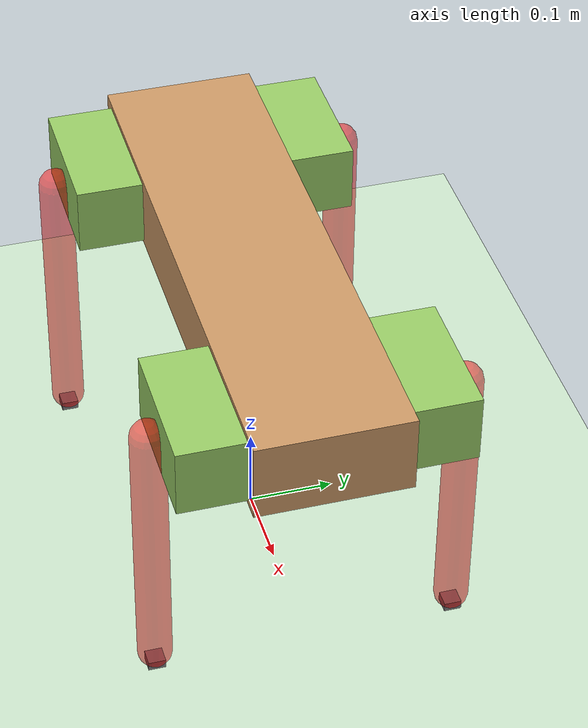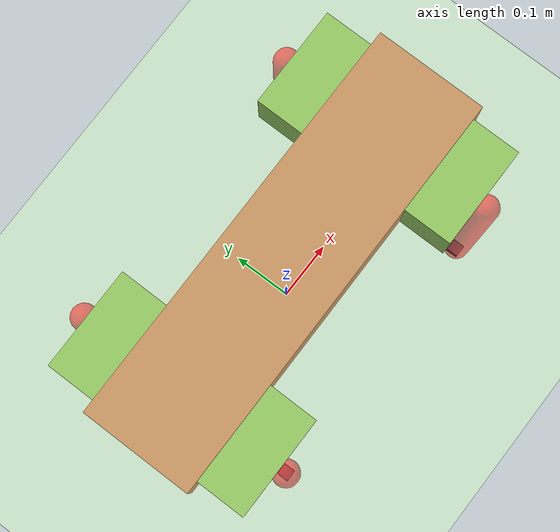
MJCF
<!-- Stanford Woofer Model

    The state space is populated with joints in the order that they are
    defined in this file.
-->
<mujoco model="cheetah">
  <compiler angle="radian" coordinate="local" inertiafromgeom="false"/>

  <default>
    <joint armature="0.0024" solimplimit="0.9 0.95 0.001" solreflimit="0.001 1" stiffness="0"/>
    <geom conaffinity="0" condim="3" contype="1" friction="1.5 .1 .1" rgba="0.8 0.6 .4 1" solimp="0.9 0.95 0.001" solref="0.005 2"/>
    <motor ctrllimited="true" forcelimited="true"/>
  </default>

	<option>
		<flag sensornoise="enable"/>
	</option>

	<sensor>
		<accelerometer name="accel" noise="0.01" site="imu_site"/>
		<gyro name="gyro" noise="0.02" site="imu_site"/>

		<jointpos joint="fr_x" noise="0.001"/>
		<jointpos joint="fr_y" noise="0.001"/>
		<jointpos joint="fr_r" noise="0.001"/>

		<jointpos joint="fl_x" noise="0.001"/>
		<jointpos joint="fl_y" noise="0.001"/>
		<jointpos joint="fl_r" noise="0.001"/>

		<jointpos joint="br_x" noise="0.001"/>
		<jointpos joint="br_y" noise="0.001"/>
		<jointpos joint="br_r" noise="0.001"/>

		<jointpos joint="bl_x" noise="0.001"/>
		<jointpos joint="bl_y" noise="0.001"/>
		<jointpos joint="bl_r" noise="0.001"/>

		<jointvel joint="fr_x" noise="0.01"/>
		<jointvel joint="fr_y" noise="0.01"/>
		<jointvel joint="fr_r" noise="0.01"/>

		<jointvel joint="fl_x" noise="0.01"/>
		<jointvel joint="fl_y" noise="0.01"/>
		<jointvel joint="fl_r" noise="0.01"/>

		<jointvel joint="br_x" noise="0.01"/>
		<jointvel joint="br_y" noise="0.01"/>
		<jointvel joint="br_r" noise="0.01"/>

		<jointvel joint="bl_x" noise="0.01"/>
		<jointvel joint="bl_y" noise="0.01"/>
		<jointvel joint="bl_r" noise="0.01"/>
	</sensor>

  <size nstack="300000" nuser_geom="1"/>

	<!-- Took out gravity="0 0 -9.81" term-->
  <option timestep="0.001"/>
  <asset>
    <texture builtin="gradient" height="100" rgb1="1 1 1" rgb2="0 0 0" type="skybox" width="100"/>
    <texture builtin="flat" height="1278" mark="cross" markrgb="1 1 1" name="texgeom" random="0.01" rgb1="0.8 0.6 0.4" rgb2="0.8 0.6 0.4" type="cube" width="127"/>
    <texture builtin="checker" height="100" name="texplane" rgb1="0 0 0" rgb2="0.8 0.8 0.8" type="2d" width="100"/>
    <material name="MatPlane" reflectance="0.5" shininess="1" specular="1" texrepeat="60 60" texture="texplane"/>
    <material name="geom" texture="texgeom" texuniform="true"/>
  </asset>

  <worldbody>
    <light cutoff="100" diffuse="1 1 1" dir="-0 0 -1.3" directional="true" exponent="1" pos="0 0 1.3" specular=".1 .1 .1"/>
    <geom conaffinity="1" condim="3" material="MatPlane" name="floor" pos="0 0 0" rgba="0.8 0.9 0.8 1" size="40 40 40" type="plane"/>

    <body name="torso" pos="0 0 0.34">
      <camera name="track" mode="trackcom" pos="0 -2 0.3" xyaxes="1 0 0 0 0 1"/>
      <joint armature="0" axis="1 0 0" damping="0" limited="false" name="rootx" pos="0 0 0" stiffness="0" type="free"/>

			<inertial pos="0 0 0" mass="2" diaginertia="0.0065733 0.074011 0.077763"/>
      <geom pos="0 0 0" name="torso" size="0.33 0.088 0.046" type="box"/>

			<site name="imu_site" pos="0 0 0" size=".01 .01 .01" type="box"/>

      <body name="fr_module" pos="0.23 -0.175 0">
        <geom pos="0 0.05 0" name="fr_block" type="box" size="0.08 0.04 0.04" rgba="0.6 0.8 .4 1"/>

        <joint axis="1 0 0" name="fr_x" pos="0 0 0" limited="true" range="-3 3" type="hinge" damping="0.2"/>

				<inertial pos="0 0 0" mass="1.033" fullinertia="0.002449 0.005043 0.006616 -0.001784 -.00002 -0.000007"/>

        <body name="fr" pos="0 0 0">
          <joint axis="0 1 0" name="fr_y" pos="0 0 0" limited="true" range="-3 3" type="hinge" damping="0.2"/>
          <joint axis="0 0 1" name="fr_r" pos = "0 0 0" limited="true" range="-0.18 0.18" type = "slide" damping="15"/>

					<inertial pos="0 0 0" mass="0.258" fullinertia="0.003575 0.006356 0.002973 -0.0001326 -0.0001079 -0.0002538"/>

					<site name="fr_force_site" pos="0 0 -0.34" size=".01 .01 .01" type="box"/>
          <geom axisangle="0 1 0 0" name="fr" fromto="0 0 0 0 0 -0.32" size="0.02" type="capsule" rgba = "1 0 0 0.5" density="50"/>
        </body>
      </body>

      <body name="fl_module" pos="0.23 0.175 0">
        <geom pos = "0 -0.05 0" name="fl_block" type="box" size="0.08 0.04 0.04" rgba="0.6 0.8 .4 1"/>
        <joint axis="1 0 0" name="fl_x" pos="0 0 0" limited="true" range="-3 3" type="hinge" damping="0.2"/>

				<inertial pos="0 0 0" mass="1.033" fullinertia="0.002449 0.005043 0.006616 -0.001784 -.00002 -0.000007"/>

        <body name="fl" pos="0 0 0">
          <joint axis="0 1 0" name="fl_y" pos="0 0 0" limited="true" range="-3 3" type="hinge" damping="0.2"/>
          <joint axis="0 0 1" name="fl_r" pos = "0 0 0" limited="true" range="-0.18 0.18" type = "slide" damping="15"/>

					<inertial pos="0 0 0" mass="0.258" fullinertia="0.003575 0.006356 0.002973 -0.0001326 -0.0001079 -0.0002538"/>

					<site name="fl_force_site" pos="0 0 -0.34" size=".01 .01 .01" type="box"/>
					<geom axisangle="0 1 0 0" name="fl" fromto="0 0 0 0 0 -0.32" size="0.02" type="capsule" rgba = "1 0 0 0.5" density="50"/>
        </body>
      </body>

      <body name="br_module" pos="-0.23 -0.175 0">
        <geom pos = "0 0.05 0" name="br_block" type="box" size="0.08 0.04 0.04" rgba="0.6 0.8 .4 1"/>
        <joint axis="1 0 0" name="br_x" pos="0 0 0" limited="true" range="-3 3" type="hinge" damping="0.2"/>

				<inertial pos="0 0 0" mass="1.033" fullinertia="0.002449 0.005043 0.006616 -0.001784 -.00002 -0.000007"/>

        <body name="br" pos="0 0 0">
          <joint axis="0 1 0" name="br_y" pos="0 0 0" limited="true" range="-3 3" type="hinge" damping="0.2"/>
          <joint axis="0 0 1" name="br_r" pos = "0 0 0" limited="true" range="-0.18 0.18" type = "slide" damping="15"/>

					<inertial pos="0 0 0" mass="0.258" fullinertia="0.003575 0.006356 0.002973 -0.0001326 -0.0001079 -0.0002538"/>

					<site name="br_force_site" pos="0 0 -0.34" size=".01 .01 .01" type="box"/>
					<geom axisangle="0 1 0 0" name="br" fromto="0 0 0 0 0 -0.32" size="0.02" type="capsule" rgba = "1 0 0 0.5" density="50"/>
        </body>
      </body>

      <body name="bl_module" pos="-0.23 0.175 0">
        <geom pos = "0 -0.05 0" name="bl_block" type="box" size="0.08 0.04 0.04" rgba="0.6 0.8 .4 1"/>
        <joint axis="1 0 0" name="bl_x" pos="0 0 0" limited="true" range="-3 3" type="hinge" damping="0.2"/>

				<inertial pos="0 0 0" mass="1.033" fullinertia="0.002449 0.005043 0.006616 -0.001784 -.00002 -0.000007"/>

        <body name="bl" pos="0 0 0">
          <joint axis="0 1 0" name="bl_y" pos="0 0 0" limited="true" range="-3 3" type="hinge" damping="0.2"/>
          <joint axis="0 0 1" name="bl_r" pos = "0 0 0" limited="true" range="-0.18 0.18" type = "slide" damping="15"/>

					<inertial pos="0 0 0" mass="0.258" fullinertia="0.003575 0.006356 0.002973 -0.0001326 -0.0001079 -0.0002538"/>

					<site name="bl_force_site" pos="0 0 -0.34" size=".01 .01 .01" type="box"/>
					<geom axisangle="0 1 0 0" name="bl" fromto="0 0 0 0 0 -0.32" size="0.02" type="capsule" rgba = "1 0 0 0.5" density="50"/>
        </body>
      </body>

    </body>
  </worldbody>

  <actuator>
    <motor gear="1" joint="fr_x" name="fr_x" forcerange="-12 12" ctrlrange="-12 12"/>
    <motor gear="1" joint="fr_y" name="fr_y" forcerange="-12 12" ctrlrange="-12 12"/>
    <motor gear="1" joint="fr_r" name="fr_r" forcerange="-133 133" ctrlrange="-133 133"/>

    <motor gear="1" joint="fl_x" name="fl_x" forcerange="-12 12" ctrlrange="-12 12"/>
    <motor gear="1" joint="fl_y" name="fl_y" forcerange="-12 12" ctrlrange="-12 12"/>
    <motor gear="1" joint="fl_r" name="fl_r" forcerange="-133 133" ctrlrange="-133 133"/>

    <motor gear="1" joint="br_x" name="br_x" forcerange="-12 12" ctrlrange="-12 12"/>
    <motor gear="1" joint="br_y" name="br_y" forcerange="-12 12" ctrlrange="-12 12"/>
    <motor gear="1" joint="br_r" name="br_r" forcerange="-133 133" ctrlrange="-133 133"/>

    <motor gear="1" joint="bl_x" name="bl_x" forcerange="-12 12" ctrlrange="-12 12"/>
    <motor gear="1" joint="bl_y" name="bl_y" forcerange="-12 12" ctrlrange="-12 12"/>
    <motor gear="1" joint="bl_r" name="bl_r" forcerange="-133 133" ctrlrange="-133 133"/>
  </actuator>
</mujoco>
